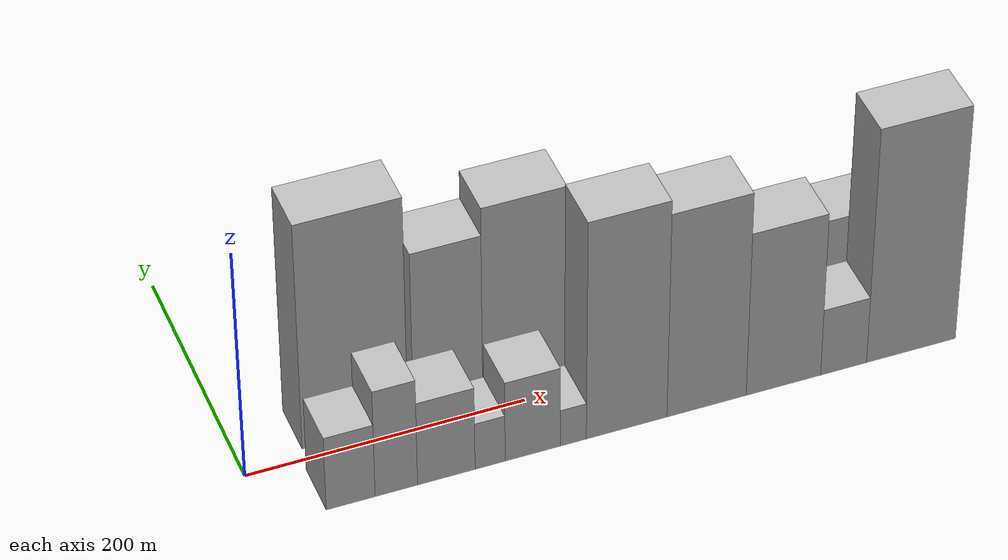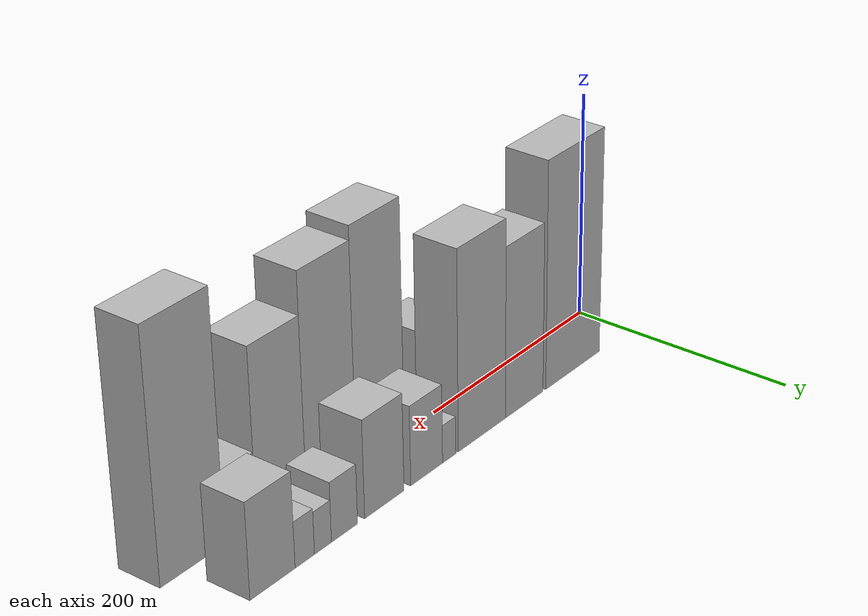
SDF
<sdf version="1.6">
 <world name="default">
  <scene>
   <sky><clouds><speed>12</speed></clouds></sky>
   <ambient>0.4 0.4 0.4 1</ambient>
   <background>0.7 0.7 0.7 1</background>
   <shadows>1</shadows>
  </scene>
  <gravity>0 0 -9.8066</gravity>
  <magnetic_field>6e-06 2.3e-05 -4.2e-05</magnetic_field>
  <physics default="0" name="default_physics" type="ode">
   <ode>
    <solver>
     <type>quick</type>
     <iters>10</iters>
     <sor>1.0</sor>
     <use_dynamic_moi_rescaling>0</use_dynamic_moi_rescaling>
    </solver>
    <constraints>
     <cfm>0</cfm>
     <erp>0.2</erp>
     <contact_max_correcting_vel>100</contact_max_correcting_vel>
     <contact_surface_layer>0.001</contact_surface_layer>
    </constraints>
   </ode>
   <max_step_size>0.004</max_step_size>
   <real_time_factor>1</real_time_factor>
   <real_time_update_rate>250</real_time_update_rate>
  </physics>
  <light name="sun" type="directional">
   <pose>0 0 10 0 0 0</pose>
   <diffuse>0.8 0.8 0.8 1</diffuse>
   <specular>0.2 0.2 0.2 1</specular>
   <attenuation>
    <range>1000</range>
    <constant>0.9</constant>
    <linear>0.01</linear>
    <quadratic>0.001</quadratic>
   </attenuation>
   <direction>-0.5 0.1 -0.9</direction>
  </light>
  <model name="building_1">
   <static>1</static>
   <pose>81.6557 30.0000 0 0.000000 0.000000 1.570796</pose>
   <link name="link">
    <pose>0 0 100.50 0 0 0</pose>
    <collision name="collision"><geometry><box><size>40.0000 75.3114 201.0000</size></box></geometry></collision>
    <visual name="visual">
     <cast_shadows>0</cast_shadows>
     <geometry><box><size>40.0000 75.3114 201.0000</size></box></geometry>
     <material>
      <script>
       <uri>model://HANNAS_wall/materials/scripts</uri>
       <uri>model://HANNAS_wall/materials/textures</uri>
       <name>vrc/HANNAS_wall</name>
      </script>
     </material>
    </visual>
   </link>
  </model>
  <model name="building_2">
   <static>1</static>
   <pose>148.3312 30.0000 0 0.000000 0.000000 1.570796</pose>
   <link name="link">
    <pose>0 0 75.00 0 0 0</pose>
    <collision name="collision"><geometry><box><size>40.0000 50.0395 150.0000</size></box></geometry></collision>
    <visual name="visual">
     <cast_shadows>0</cast_shadows>
     <geometry><box><size>40.0000 50.0395 150.0000</size></box></geometry>
     <material>
      <script>
       <uri>model://HANNAS_wall/materials/scripts</uri>
       <uri>model://HANNAS_wall/materials/textures</uri>
       <name>vrc/HANNAS_wall</name>
      </script>
     </material>
    </visual>
   </link>
  </model>
  <model name="building_3">
   <static>1</static>
   <pose>203.7426 30.0000 0 0.000000 0.000000 1.570796</pose>
   <link name="link">
    <pose>0 0 87.00 0 0 0</pose>
    <collision name="collision"><geometry><box><size>40.0000 60.7833 174.0000</size></box></geometry></collision>
    <visual name="visual">
     <cast_shadows>0</cast_shadows>
     <geometry><box><size>40.0000 60.7833 174.0000</size></box></geometry>
     <material>
      <script>
       <uri>model://HANNAS_wall/materials/scripts</uri>
       <uri>model://HANNAS_wall/materials/textures</uri>
       <name>vrc/HANNAS_wall</name>
      </script>
     </material>
    </visual>
   </link>
  </model>
  <model name="building_4">
   <static>1</static>
   <pose>245.4275 30.0000 0 0.000000 0.000000 1.570796</pose>
   <link name="link">
    <pose>0 0 16.50 0 0 0</pose>
    <collision name="collision"><geometry><box><size>40.0000 16.5865 33.0000</size></box></geometry></collision>
    <visual name="visual">
     <cast_shadows>0</cast_shadows>
     <geometry><box><size>40.0000 16.5865 33.0000</size></box></geometry>
     <material>
      <script>
       <uri>model://HANNAS_wall/materials/scripts</uri>
       <uri>model://HANNAS_wall/materials/textures</uri>
       <name>vrc/HANNAS_wall</name>
      </script>
     </material>
    </visual>
   </link>
  </model>
  <model name="building_5">
   <static>1</static>
   <pose>273.1363 30.0000 0 0.000000 0.000000 1.570796</pose>
   <link name="link">
    <pose>0 0 34.50 0 0 0</pose>
    <collision name="collision"><geometry><box><size>40.0000 38.8312 69.0000</size></box></geometry></collision>
    <visual name="visual">
     <cast_shadows>0</cast_shadows>
     <geometry><box><size>40.0000 38.8312 69.0000</size></box></geometry>
     <material>
      <script>
       <uri>model://HANNAS_wall/materials/scripts</uri>
       <uri>model://HANNAS_wall/materials/textures</uri>
       <name>vrc/HANNAS_wall</name>
      </script>
     </material>
    </visual>
   </link>
  </model>
  <model name="building_6">
   <static>1</static>
   <pose>323.5756 30.0000 0 0.000000 0.000000 1.570796</pose>
   <link name="link">
    <pose>0 0 42.00 0 0 0</pose>
    <collision name="collision"><geometry><box><size>40.0000 46.0475 84.0000</size></box></geometry></collision>
    <visual name="visual">
     <cast_shadows>0</cast_shadows>
     <geometry><box><size>40.0000 46.0475 84.0000</size></box></geometry>
     <material>
      <script>
       <uri>model://HANNAS_wall/materials/scripts</uri>
       <uri>model://HANNAS_wall/materials/textures</uri>
       <name>vrc/HANNAS_wall</name>
      </script>
     </material>
    </visual>
   </link>
  </model>
  <model name="building_7">
   <static>1</static>
   <pose>369.3355 30.0000 0 0.000000 0.000000 1.570796</pose>
   <link name="link">
    <pose>0 0 25.50 0 0 0</pose>
    <collision name="collision"><geometry><box><size>40.0000 29.4723 51.0000</size></box></geometry></collision>
    <visual name="visual">
     <cast_shadows>0</cast_shadows>
     <geometry><box><size>40.0000 29.4723 51.0000</size></box></geometry>
     <material>
      <script>
       <uri>model://HANNAS_wall/materials/scripts</uri>
       <uri>model://HANNAS_wall/materials/textures</uri>
       <name>vrc/HANNAS_wall</name>
      </script>
     </material>
    </visual>
   </link>
  </model>
  <model name="building_8">
   <static>1</static>
   <pose>393.4310 30.0000 0 0.000000 0.000000 1.570796</pose>
   <link name="link">
    <pose>0 0 18.00 0 0 0</pose>
    <collision name="collision"><geometry><box><size>40.0000 18.7187 36.0000</size></box></geometry></collision>
    <visual name="visual">
     <cast_shadows>0</cast_shadows>
     <geometry><box><size>40.0000 18.7187 36.0000</size></box></geometry>
     <material>
      <script>
       <uri>model://HANNAS_wall/materials/scripts</uri>
       <uri>model://HANNAS_wall/materials/textures</uri>
       <name>vrc/HANNAS_wall</name>
      </script>
     </material>
    </visual>
   </link>
  </model>
  <model name="building_9">
   <static>1</static>
   <pose>413.2855 30.0000 0 0.000000 0.000000 1.570796</pose>
   <link name="link">
    <pose>0 0 19.50 0 0 0</pose>
    <collision name="collision"><geometry><box><size>40.0000 20.9903 39.0000</size></box></geometry></collision>
    <visual name="visual">
     <cast_shadows>0</cast_shadows>
     <geometry><box><size>40.0000 20.9903 39.0000</size></box></geometry>
     <material>
      <script>
       <uri>model://HANNAS_wall/materials/scripts</uri>
       <uri>model://HANNAS_wall/materials/textures</uri>
       <name>vrc/HANNAS_wall</name>
      </script>
     </material>
    </visual>
   </link>
  </model>
  <model name="building_10">
   <static>1</static>
   <pose>447.5968 30.0000 0 0.000000 0.000000 1.570796</pose>
   <link name="link">
    <pose>0 0 40.50 0 0 0</pose>
    <collision name="collision"><geometry><box><size>40.0000 47.6323 81.0000</size></box></geometry></collision>
    <visual name="visual">
     <cast_shadows>0</cast_shadows>
     <geometry><box><size>40.0000 47.6323 81.0000</size></box></geometry>
     <material>
      <script>
       <uri>model://HANNAS_wall/materials/scripts</uri>
       <uri>model://HANNAS_wall/materials/textures</uri>
       <name>vrc/HANNAS_wall</name>
      </script>
     </material>
    </visual>
   </link>
  </model>
  <model name="building_11">
   <static>1</static>
   <pose>57.1904 -30.0000 0 0.000000 0.000000 1.570796</pose>
   <link name="link">
    <pose>0 0 33.00 0 0 0</pose>
    <collision name="collision"><geometry><box><size>40.0000 34.3808 66.0000</size></box></geometry></collision>
    <visual name="visual">
     <cast_shadows>0</cast_shadows>
     <geometry><box><size>40.0000 34.3808 66.0000</size></box></geometry>
     <material>
      <script>
       <uri>model://HANNAS_wall/materials/scripts</uri>
       <uri>model://HANNAS_wall/materials/textures</uri>
       <name>vrc/HANNAS_wall</name>
      </script>
     </material>
    </visual>
   </link>
  </model>
  <model name="building_12">
   <static>1</static>
   <pose>89.3682 -30.0000 0 0.000000 0.000000 1.570796</pose>
   <link name="link">
    <pose>0 0 48.00 0 0 0</pose>
    <collision name="collision"><geometry><box><size>40.0000 29.9749 96.0000</size></box></geometry></collision>
    <visual name="visual">
     <cast_shadows>0</cast_shadows>
     <geometry><box><size>40.0000 29.9749 96.0000</size></box></geometry>
     <material>
      <script>
       <uri>model://HANNAS_wall/materials/scripts</uri>
       <uri>model://HANNAS_wall/materials/textures</uri>
       <name>vrc/HANNAS_wall</name>
      </script>
     </material>
    </visual>
   </link>
  </model>
  <model name="building_13">
   <static>1</static>
   <pose>124.7605 -30.0000 0 0.000000 0.000000 1.570796</pose>
   <link name="link">
    <pose>0 0 37.50 0 0 0</pose>
    <collision name="collision"><geometry><box><size>40.0000 40.8096 75.0000</size></box></geometry></collision>
    <visual name="visual">
     <cast_shadows>0</cast_shadows>
     <geometry><box><size>40.0000 40.8096 75.0000</size></box></geometry>
     <material>
      <script>
       <uri>model://HANNAS_wall/materials/scripts</uri>
       <uri>model://HANNAS_wall/materials/textures</uri>
       <name>vrc/HANNAS_wall</name>
      </script>
     </material>
    </visual>
   </link>
  </model>
  <model name="building_14">
   <static>1</static>
   <pose>155.8961 -30.0000 0 0.000000 0.000000 1.570796</pose>
   <link name="link">
    <pose>0 0 21.00 0 0 0</pose>
    <collision name="collision"><geometry><box><size>40.0000 21.4616 42.0000</size></box></geometry></collision>
    <visual name="visual">
     <cast_shadows>0</cast_shadows>
     <geometry><box><size>40.0000 21.4616 42.0000</size></box></geometry>
     <material>
      <script>
       <uri>model://HANNAS_wall/materials/scripts</uri>
       <uri>model://HANNAS_wall/materials/textures</uri>
       <name>vrc/HANNAS_wall</name>
      </script>
     </material>
    </visual>
   </link>
  </model>
  <model name="building_15">
   <static>1</static>
   <pose>186.4524 -30.0000 0 0.000000 0.000000 1.570796</pose>
   <link name="link">
    <pose>0 0 36.00 0 0 0</pose>
    <collision name="collision"><geometry><box><size>40.0000 39.6511 72.0000</size></box></geometry></collision>
    <visual name="visual">
     <cast_shadows>0</cast_shadows>
     <geometry><box><size>40.0000 39.6511 72.0000</size></box></geometry>
     <material>
      <script>
       <uri>model://HANNAS_wall/materials/scripts</uri>
       <uri>model://HANNAS_wall/materials/textures</uri>
       <name>vrc/HANNAS_wall</name>
      </script>
     </material>
    </visual>
   </link>
  </model>
  <model name="building_16">
   <static>1</static>
   <pose>215.6067 -30.0000 0 0.000000 0.000000 1.570796</pose>
   <link name="link">
    <pose>0 0 16.50 0 0 0</pose>
    <collision name="collision"><geometry><box><size>40.0000 18.6576 33.0000</size></box></geometry></collision>
    <visual name="visual">
     <cast_shadows>0</cast_shadows>
     <geometry><box><size>40.0000 18.6576 33.0000</size></box></geometry>
     <material>
      <script>
       <uri>model://HANNAS_wall/materials/scripts</uri>
       <uri>model://HANNAS_wall/materials/textures</uri>
       <name>vrc/HANNAS_wall</name>
      </script>
     </material>
    </visual>
   </link>
  </model>
  <model name="building_17">
   <static>1</static>
   <pose>254.2596 -30.0000 0 0.000000 0.000000 1.570796</pose>
   <link name="link">
    <pose>0 0 97.50 0 0 0</pose>
    <collision name="collision"><geometry><box><size>40.0000 58.6482 195.0000</size></box></geometry></collision>
    <visual name="visual">
     <cast_shadows>0</cast_shadows>
     <geometry><box><size>40.0000 58.6482 195.0000</size></box></geometry>
     <material>
      <script>
       <uri>model://HANNAS_wall/materials/scripts</uri>
       <uri>model://HANNAS_wall/materials/textures</uri>
       <name>vrc/HANNAS_wall</name>
      </script>
     </material>
    </visual>
   </link>
  </model>
  <model name="building_18">
   <static>1</static>
   <pose>312.5923 -30.0000 0 0.000000 0.000000 1.570796</pose>
   <link name="link">
    <pose>0 0 91.50 0 0 0</pose>
    <collision name="collision"><geometry><box><size>40.0000 58.0172 183.0000</size></box></geometry></collision>
    <visual name="visual">
     <cast_shadows>0</cast_shadows>
     <geometry><box><size>40.0000 58.0172 183.0000</size></box></geometry>
     <material>
      <script>
       <uri>model://HANNAS_wall/materials/scripts</uri>
       <uri>model://HANNAS_wall/materials/textures</uri>
       <name>vrc/HANNAS_wall</name>
      </script>
     </material>
    </visual>
   </link>
  </model>
  <model name="building_19">
   <static>1</static>
   <pose>369.1238 -30.0000 0 0.000000 0.000000 1.570796</pose>
   <link name="link">
    <pose>0 0 73.50 0 0 0</pose>
    <collision name="collision"><geometry><box><size>40.0000 55.0456 147.0000</size></box></geometry></collision>
    <visual name="visual">
     <cast_shadows>0</cast_shadows>
     <geometry><box><size>40.0000 55.0456 147.0000</size></box></geometry>
     <material>
      <script>
       <uri>model://HANNAS_wall/materials/scripts</uri>
       <uri>model://HANNAS_wall/materials/textures</uri>
       <name>vrc/HANNAS_wall</name>
      </script>
     </material>
    </visual>
   </link>
  </model>
  <model name="building_20">
   <static>1</static>
   <pose>413.7458 -30.0000 0 0.000000 0.000000 1.570796</pose>
   <link name="link">
    <pose>0 0 30.00 0 0 0</pose>
    <collision name="collision"><geometry><box><size>40.0000 34.1984 60.0000</size></box></geometry></collision>
    <visual name="visual">
     <cast_shadows>0</cast_shadows>
     <geometry><box><size>40.0000 34.1984 60.0000</size></box></geometry>
     <material>
      <script>
       <uri>model://HANNAS_wall/materials/scripts</uri>
       <uri>model://HANNAS_wall/materials/textures</uri>
       <name>vrc/HANNAS_wall</name>
      </script>
     </material>
    </visual>
   </link>
  </model>
  <model name="building_21">
   <static>1</static>
   <pose>464.2165 -30.0000 0 0.000000 0.000000 1.570796</pose>
   <link name="link">
    <pose>0 0 105.00 0 0 0</pose>
    <collision name="collision"><geometry><box><size>40.0000 66.7431 210.0000</size></box></geometry></collision>
    <visual name="visual">
     <cast_shadows>0</cast_shadows>
     <geometry><box><size>40.0000 66.7431 210.0000</size></box></geometry>
     <material>
      <script>
       <uri>model://HANNAS_wall/materials/scripts</uri>
       <uri>model://HANNAS_wall/materials/textures</uri>
       <name>vrc/HANNAS_wall</name>
      </script>
     </material>
    </visual>
   </link>
  </model>
 </world>
</sdf>
